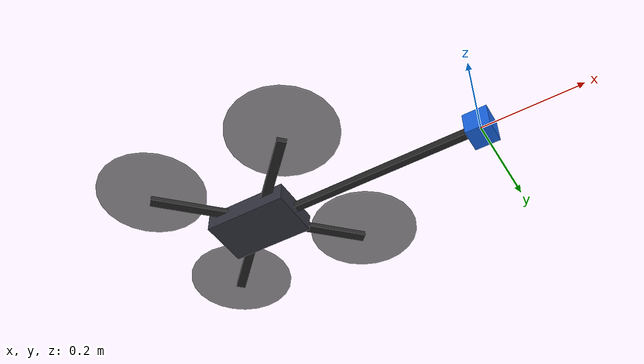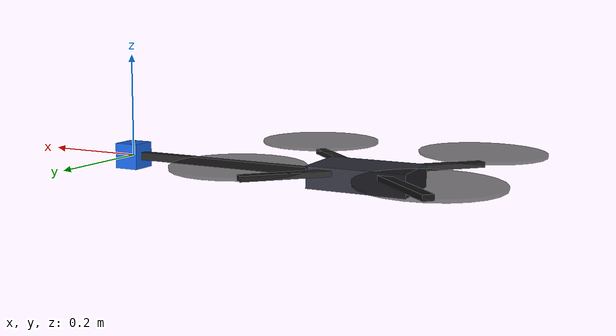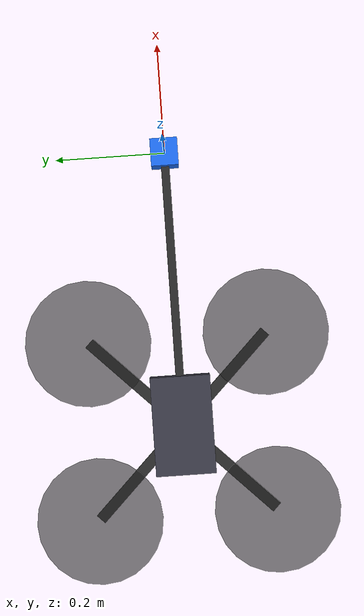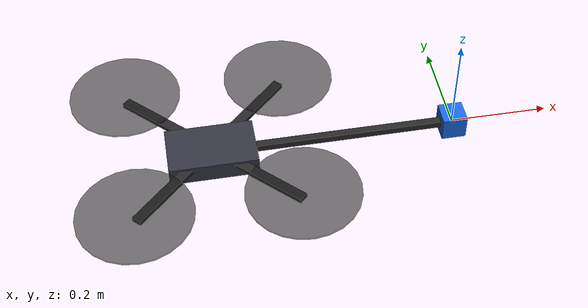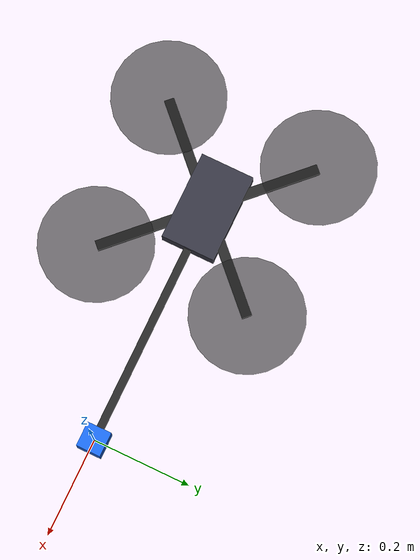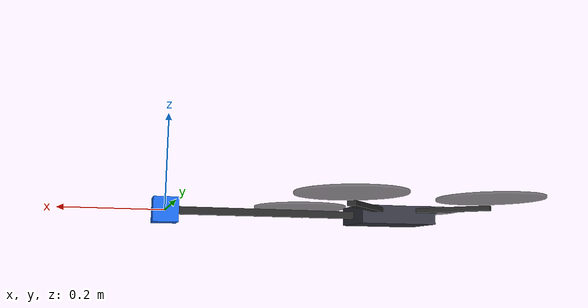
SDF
<?xml version="1.0"?>
<sdf version="1.10">
  <model name="midair_quad" canonical_link="base_link">

    <link name="base_link">
      <pose>-0.5 0 0 0 0 0</pose>
      <inertial>
        <mass>0.97</mass>
        <!-- body box plus four 55 g motors at the arm tips, as AirSim computes it -->
        <inertia><ixx>0.0066</ixx><iyy>0.0079</iyy><izz>0.0143</izz><ixy>0</ixy><ixz>0</ixz><iyz>0</iyz></inertia>
      </inertial>
      <visual name="body">
        <geometry><box><size>0.18 0.11 0.04</size></box></geometry>
        <material><ambient>0.2 0.2 0.25 1</ambient><diffuse>0.2 0.2 0.25 1</diffuse></material>
      </visual>
      <visual name="arm_a">
        <pose>0 0 0.01 0 0 0.7854</pose>
        <geometry><box><size>0.455 0.02 0.01</size></box></geometry>
        <material><ambient>0.15 0.15 0.15 1</ambient><diffuse>0.15 0.15 0.15 1</diffuse></material>
      </visual>
      <visual name="arm_b">
        <pose>0 0 0.01 0 0 -0.7854</pose>
        <geometry><box><size>0.455 0.02 0.01</size></box></geometry>
        <material><ambient>0.15 0.15 0.15 1</ambient><diffuse>0.15 0.15 0.15 1</diffuse></material>
      </visual>
      <visual name="boom">
        <pose>0.25 0 0 0 0 0</pose>
        <geometry><box><size>0.5 0.015 0.015</size></box></geometry>
        <material><ambient>0.15 0.15 0.15 1</ambient><diffuse>0.15 0.15 0.15 1</diffuse></material>
      </visual>
      <collision name="body">
        <geometry><box><size>0.36 0.36 0.06</size></box></geometry>
      </collision>
    </link>

    <link name="sensor_link">
      <pose>0 0 0 0 0 0</pose>
      <inertial>
        <mass>0.01</mass>
        <inertia><ixx>1e-06</ixx><iyy>1e-06</iyy><izz>1e-06</izz><ixy>0</ixy><ixz>0</ixz><iyz>0</iyz></inertia>
      </inertial>
      <visual name="pod">
        <geometry><box><size>0.05 0.05 0.05</size></box></geometry>
        <material><ambient>0.1 0.4 0.9 1</ambient><diffuse>0.1 0.4 0.9 1</diffuse></material>
      </visual>
      <collision name="pod">
        <geometry><box><size>0.05 0.05 0.05</size></box></geometry>
      </collision>

      <sensor name="camera_down" type="camera">
        <!-- pitch +90 deg: the optical axis (+X) points down, image top points forward -->
        <pose>0 0 0 0 1.5708 0</pose>
        <always_on>true</always_on>
        <update_rate>25</update_rate>
        <visualize>true</visualize>
        <topic>camera/down/image_raw</topic>
        <gz_frame_id>camera_down</gz_frame_id>
        <camera>
          <horizontal_fov>1.5708</horizontal_fov>
          <image><width>1024</width><height>1024</height><format>R8G8B8</format></image>
          <clip><near>0.1</near><far>3000</far></clip>
        </camera>
      </sensor>

      <sensor name="camera_forward" type="camera">
        <!-- optical axis (+X) points forward; used by the visual velocity-direction update -->
        <pose>0 0 0 0 0 0</pose>
        <always_on>true</always_on>
        <update_rate>25</update_rate>
        <visualize>false</visualize>
        <topic>camera/forward/image_raw</topic>
        <gz_frame_id>camera_forward</gz_frame_id>
        <camera>
          <horizontal_fov>1.5708</horizontal_fov>
          <image><width>1024</width><height>1024</height><format>R8G8B8</format></image>
          <clip><near>0.1</near><far>3000</far></clip>
        </camera>
      </sensor>

      <sensor name="imu" type="imu">
        <always_on>true</always_on>
        <update_rate>100</update_rate>
        <topic>sim/imu_raw</topic>
        <gz_frame_id>sensor_link</gz_frame_id>
      </sensor>

      <sensor name="air_pressure" type="air_pressure">
        <always_on>true</always_on>
        <update_rate>50</update_rate>
        <topic>sim/air_pressure_raw</topic>
        <gz_frame_id>sensor_link</gz_frame_id>
        <air_pressure>
          <reference_altitude>0</reference_altitude>
          <pressure>
            <!-- about 0.8 m of altitude noise, typical for an MS5611-class MEMS barometer -->
            <noise type="gaussian"><mean>0</mean><stddev>10</stddev></noise>
          </pressure>
        </air_pressure>
      </sensor>

      <sensor name="navsat" type="navsat">
        <always_on>true</always_on>
        <update_rate>1</update_rate>
        <topic>sim/navsat_raw</topic>
        <gz_frame_id>sensor_link</gz_frame_id>
        <navsat>
          <position_sensing>
            <!-- Gazebo applies horizontal noise to latitude and longitude in DEGREES:
                 1.4e-5 deg is about 1.5 m. Vertical noise is in metres. -->
            <horizontal><noise type="gaussian"><mean>0</mean><stddev>1.4e-5</stddev></noise></horizontal>
            <vertical><noise type="gaussian"><mean>0</mean><stddev>3.0</stddev></noise></vertical>
          </position_sensing>
        </navsat>
      </sensor>
    </link>

    <joint name="sensor_mount" type="fixed">
      <parent>base_link</parent>
      <child>sensor_link</child>
    </joint>

    <link name="rotor_0">
      <pose>-0.3391 -0.1609 0.03 0 0 0</pose>
      <inertial>
        <mass>0.005</mass>
        <inertia><ixx>9.75e-07</ixx><iyy>2.17e-05</iyy><izz>2.17e-05</izz><ixy>0</ixy><ixz>0</ixz><iyz>0</iyz></inertia>
      </inertial>
      <visual name="visual">
        <geometry><cylinder><radius>0.114</radius><length>0.005</length></cylinder></geometry>
        <material><ambient>0.1 0.1 0.1 0.6</ambient><diffuse>0.1 0.1 0.1 0.6</diffuse></material>
        <transparency>0.4</transparency>
      </visual>
    </link>
    <joint name="rotor_0_joint" type="revolute">
      <parent>base_link</parent>
      <child>rotor_0</child>
      <axis>
        <xyz>0 0 1</xyz>
        <limit><lower>-1e16</lower><upper>1e16</upper></limit>
      </axis>
    </joint>
    <link name="rotor_1">
      <pose>-0.6609 0.1609 0.03 0 0 0</pose>
      <inertial>
        <mass>0.005</mass>
        <inertia><ixx>9.75e-07</ixx><iyy>2.17e-05</iyy><izz>2.17e-05</izz><ixy>0</ixy><ixz>0</ixz><iyz>0</iyz></inertia>
      </inertial>
      <visual name="visual">
        <geometry><cylinder><radius>0.114</radius><length>0.005</length></cylinder></geometry>
        <material><ambient>0.1 0.1 0.1 0.6</ambient><diffuse>0.1 0.1 0.1 0.6</diffuse></material>
        <transparency>0.4</transparency>
      </visual>
    </link>
    <joint name="rotor_1_joint" type="revolute">
      <parent>base_link</parent>
      <child>rotor_1</child>
      <axis>
        <xyz>0 0 1</xyz>
        <limit><lower>-1e16</lower><upper>1e16</upper></limit>
      </axis>
    </joint>
    <link name="rotor_2">
      <pose>-0.3391 0.1609 0.03 0 0 0</pose>
      <inertial>
        <mass>0.005</mass>
        <inertia><ixx>9.75e-07</ixx><iyy>2.17e-05</iyy><izz>2.17e-05</izz><ixy>0</ixy><ixz>0</ixz><iyz>0</iyz></inertia>
      </inertial>
      <visual name="visual">
        <geometry><cylinder><radius>0.114</radius><length>0.005</length></cylinder></geometry>
        <material><ambient>0.1 0.1 0.1 0.6</ambient><diffuse>0.1 0.1 0.1 0.6</diffuse></material>
        <transparency>0.4</transparency>
      </visual>
    </link>
    <joint name="rotor_2_joint" type="revolute">
      <parent>base_link</parent>
      <child>rotor_2</child>
      <axis>
        <xyz>0 0 1</xyz>
        <limit><lower>-1e16</lower><upper>1e16</upper></limit>
      </axis>
    </joint>
    <link name="rotor_3">
      <pose>-0.6609 -0.1609 0.03 0 0 0</pose>
      <inertial>
        <mass>0.005</mass>
        <inertia><ixx>9.75e-07</ixx><iyy>2.17e-05</iyy><izz>2.17e-05</izz><ixy>0</ixy><ixz>0</ixz><iyz>0</iyz></inertia>
      </inertial>
      <visual name="visual">
        <geometry><cylinder><radius>0.114</radius><length>0.005</length></cylinder></geometry>
        <material><ambient>0.1 0.1 0.1 0.6</ambient><diffuse>0.1 0.1 0.1 0.6</diffuse></material>
        <transparency>0.4</transparency>
      </visual>
    </link>
    <joint name="rotor_3_joint" type="revolute">
      <parent>base_link</parent>
      <child>rotor_3</child>
      <axis>
        <xyz>0 0 1</xyz>
        <limit><lower>-1e16</lower><upper>1e16</upper></limit>
      </axis>
    </joint>

    <plugin filename="gz-sim-multicopter-motor-model-system" name="gz::sim::systems::MulticopterMotorModel">
      <robotNamespace>midair_quad</robotNamespace>
      <jointName>rotor_0_joint</jointName>
      <linkName>rotor_0</linkName>
      <turningDirection>ccw</turningDirection>
      <timeConstantUp>0.0125</timeConstantUp>
      <timeConstantDown>0.025</timeConstantDown>
      <maxRotVelocity>700.0</maxRotVelocity>
      <motorConstant>8.54858e-06</motorConstant>
      <momentConstant>0.016</momentConstant>
      <commandSubTopic>command/motor_speed</commandSubTopic>
      <motorNumber>0</motorNumber>
      <rotorDragCoefficient>8.06428e-05</rotorDragCoefficient>
      <rollingMomentCoefficient>1e-06</rollingMomentCoefficient>
      <rotorVelocitySlowdownSim>10</rotorVelocitySlowdownSim>
      <motorType>velocity</motorType>
    </plugin>
    <plugin filename="gz-sim-multicopter-motor-model-system" name="gz::sim::systems::MulticopterMotorModel">
      <robotNamespace>midair_quad</robotNamespace>
      <jointName>rotor_1_joint</jointName>
      <linkName>rotor_1</linkName>
      <turningDirection>ccw</turningDirection>
      <timeConstantUp>0.0125</timeConstantUp>
      <timeConstantDown>0.025</timeConstantDown>
      <maxRotVelocity>700.0</maxRotVelocity>
      <motorConstant>8.54858e-06</motorConstant>
      <momentConstant>0.016</momentConstant>
      <commandSubTopic>command/motor_speed</commandSubTopic>
      <motorNumber>1</motorNumber>
      <rotorDragCoefficient>8.06428e-05</rotorDragCoefficient>
      <rollingMomentCoefficient>1e-06</rollingMomentCoefficient>
      <rotorVelocitySlowdownSim>10</rotorVelocitySlowdownSim>
      <motorType>velocity</motorType>
    </plugin>
    <plugin filename="gz-sim-multicopter-motor-model-system" name="gz::sim::systems::MulticopterMotorModel">
      <robotNamespace>midair_quad</robotNamespace>
      <jointName>rotor_2_joint</jointName>
      <linkName>rotor_2</linkName>
      <turningDirection>cw</turningDirection>
      <timeConstantUp>0.0125</timeConstantUp>
      <timeConstantDown>0.025</timeConstantDown>
      <maxRotVelocity>700.0</maxRotVelocity>
      <motorConstant>8.54858e-06</motorConstant>
      <momentConstant>0.016</momentConstant>
      <commandSubTopic>command/motor_speed</commandSubTopic>
      <motorNumber>2</motorNumber>
      <rotorDragCoefficient>8.06428e-05</rotorDragCoefficient>
      <rollingMomentCoefficient>1e-06</rollingMomentCoefficient>
      <rotorVelocitySlowdownSim>10</rotorVelocitySlowdownSim>
      <motorType>velocity</motorType>
    </plugin>
    <plugin filename="gz-sim-multicopter-motor-model-system" name="gz::sim::systems::MulticopterMotorModel">
      <robotNamespace>midair_quad</robotNamespace>
      <jointName>rotor_3_joint</jointName>
      <linkName>rotor_3</linkName>
      <turningDirection>cw</turningDirection>
      <timeConstantUp>0.0125</timeConstantUp>
      <timeConstantDown>0.025</timeConstantDown>
      <maxRotVelocity>700.0</maxRotVelocity>
      <motorConstant>8.54858e-06</motorConstant>
      <momentConstant>0.016</momentConstant>
      <commandSubTopic>command/motor_speed</commandSubTopic>
      <motorNumber>3</motorNumber>
      <rotorDragCoefficient>8.06428e-05</rotorDragCoefficient>
      <rollingMomentCoefficient>1e-06</rollingMomentCoefficient>
      <rotorVelocitySlowdownSim>10</rotorVelocitySlowdownSim>
      <motorType>velocity</motorType>
    </plugin>

    <plugin filename="gz-sim-multicopter-control-system" name="gz::sim::systems::MulticopterVelocityControl">
      <robotNamespace>midair_quad</robotNamespace>
      <commandSubTopic>gazebo/command/twist</commandSubTopic>
      <enableSubTopic>enable</enableSubTopic>
      <comLinkName>base_link</comLinkName>
      <velocityGain>2.7 2.7 2.7</velocityGain>
      <attitudeGain>2 3 0.15</attitudeGain>
      <angularRateGain>0.4 0.52 0.18</angularRateGain>
      <maximumLinearAcceleration>2 2 2</maximumLinearAcceleration>
      <rotorConfiguration>
        <rotor>
          <jointName>rotor_0_joint</jointName>
          <forceConstant>8.54858e-06</forceConstant>
          <momentConstant>0.016</momentConstant>
          <direction>1</direction>
        </rotor>
        <rotor>
          <jointName>rotor_1_joint</jointName>
          <forceConstant>8.54858e-06</forceConstant>
          <momentConstant>0.016</momentConstant>
          <direction>1</direction>
        </rotor>
        <rotor>
          <jointName>rotor_2_joint</jointName>
          <forceConstant>8.54858e-06</forceConstant>
          <momentConstant>0.016</momentConstant>
          <direction>-1</direction>
        </rotor>
        <rotor>
          <jointName>rotor_3_joint</jointName>
          <forceConstant>8.54858e-06</forceConstant>
          <momentConstant>0.016</momentConstant>
          <direction>-1</direction>
        </rotor>
      </rotorConfiguration>
    </plugin>

    <!-- Ground truth: pose and twist of the model frame (= sensor_link, the IMU origin) at 100 Hz -->
    <plugin filename="gz-sim-odometry-publisher-system" name="gz::sim::systems::OdometryPublisher">
      <odom_frame>world</odom_frame>
      <robot_base_frame>sensor_link</robot_base_frame>
      <odom_publish_frequency>100</odom_publish_frequency>
      <dimensions>3</dimensions>
      <odom_topic>ground_truth/odom</odom_topic>
    </plugin>
  </model>
</sdf>
